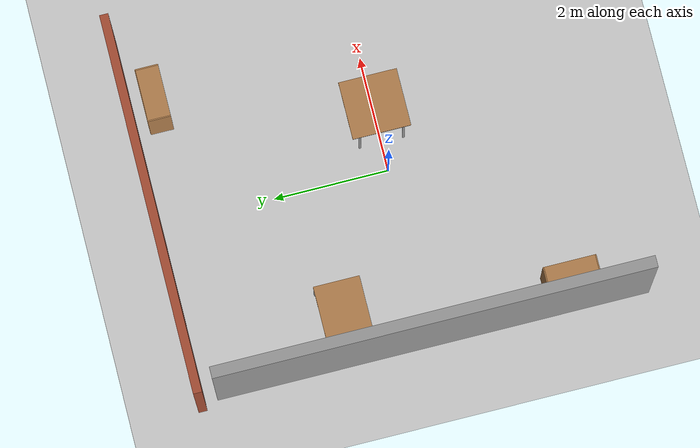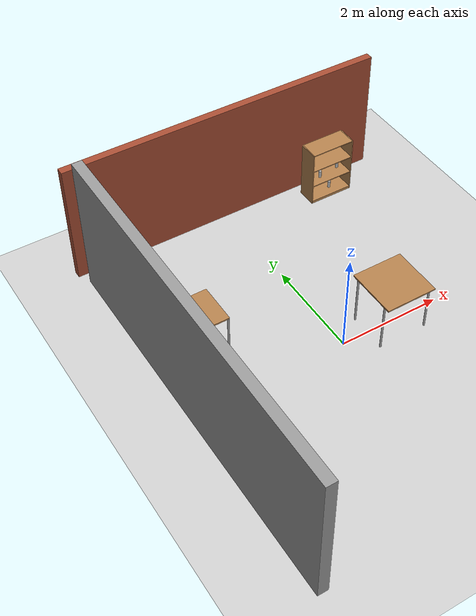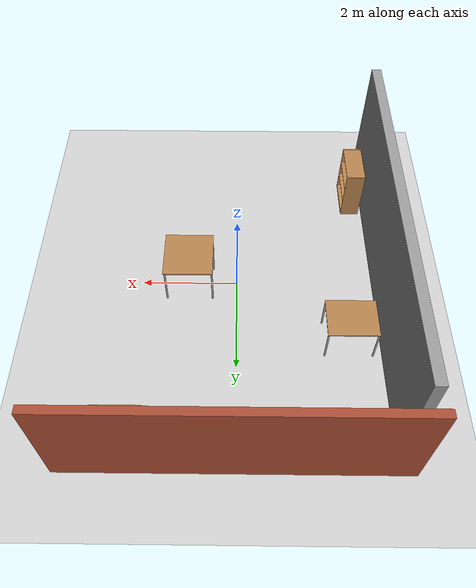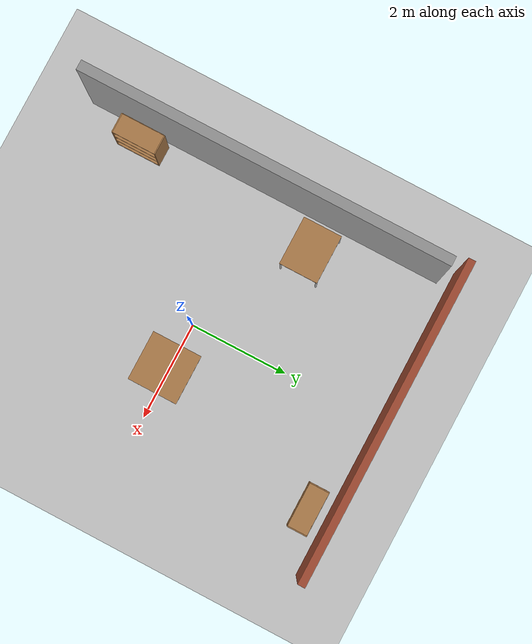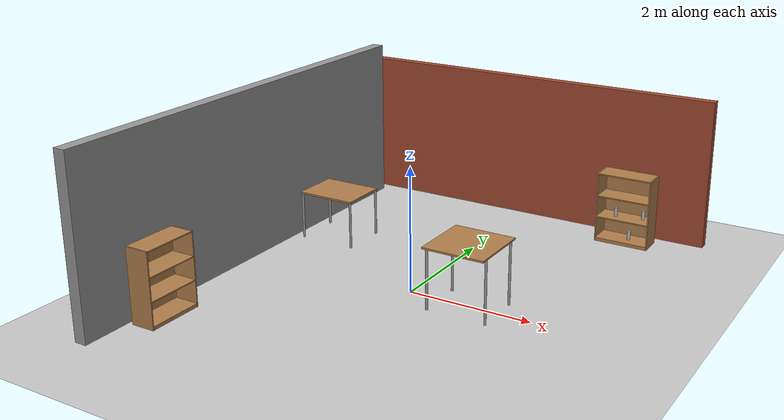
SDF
<sdf version="1.6">
 <world name="default">
  <light name="sun" type="directional">
   <pose>0 0 10 0 -0 0</pose>
   <diffuse>0.8 0.8 0.8 1</diffuse>
   <specular>0.1 0.1 0.1 1</specular>
   <attenuation>
    <range>1000</range>
    <constant>0.9</constant>
    <linear>0.01</linear>
    <quadratic>0.001</quadratic>
   </attenuation>
   <direction>-0.5 0.5 -1</direction>
  </light>
  <model name="ground_plane">
   <static>1</static>
   <link name="link">
    <collision name="collision">
     <geometry><plane><normal>0 0 1</normal><size>100 100</size></plane></geometry>
     <surface><friction><ode><mu>100</mu><mu2>50</mu2></ode></friction></surface>
    </collision>
    <visual name="visual">
     <cast_shadows>0</cast_shadows>
     <geometry><plane><normal>0 0 1</normal><size>100 100</size></plane></geometry>
     <material>
      <script><uri>file://media/materials/scripts/gazebo.material</uri><name>Gazebo/Grey</name></script>
     </material>
    </visual>
   </link>
  </model>
  <gravity>0 0 -9.8</gravity>
  <magnetic_field>6e-06 2.3e-05 -4.2e-05</magnetic_field>
  <atmosphere type="adiabatic"/>
  <physics name="default_physics" default="0" type="ode">
   <max_step_size>0.001</max_step_size>
   <real_time_factor>1</real_time_factor>
   <real_time_update_rate>1000</real_time_update_rate>
  </physics>
  <scene><ambient>0.4 0.4 0.4 1</ambient><background>0.7 0.7 0.7 1</background><shadows>1</shadows></scene>
  <spherical_coordinates>
   <surface_model>EARTH_WGS84</surface_model>
   <latitude_deg>0</latitude_deg>
   <longitude_deg>0</longitude_deg>
   <elevation>0</elevation>
   <heading_deg>0</heading_deg>
  </spherical_coordinates>
  <model name="Brick_Wall">
   <pose>0.021866 4.0336 0 0 -0 0</pose>
   <link name="Wall_0">
    <collision name="Wall_0_Collision">
     <geometry><box><size>6.5 0.15 2.5</size></box></geometry>
     <pose>0 0 1.25 0 -0 0</pose>
    </collision>
    <visual name="Wall_0_Visual">
     <pose>0 0 1.25 0 -0 0</pose>
     <geometry><box><size>6.5 0.15 2.5</size></box></geometry>
     <material>
      <script><uri>file://media/materials/scripts/gazebo.material</uri><name>Gazebo/Bricks</name></script>
      <ambient>1 1 1 1</ambient>
     </material>
    </visual>
   </link>
   <static>1</static>
  </model>
  <model name="grey_wall">
   <static>1</static>
   <link name="link">
    <pose>0 0 1.4 0 -0 0</pose>
    <collision name="collision"><geometry><box><size>7.5 0.2 2.8</size></box></geometry></collision>
    <visual name="visual">
     <cast_shadows>0</cast_shadows>
     <geometry><box><size>7.5 0.2 2.8</size></box></geometry>
     <material>
      <script>
       <uri>model://grey_wall/materials/scripts</uri>
       <uri>model://grey_wall/materials/textures</uri>
       <name>vrc/grey_wall</name>
      </script>
     </material>
    </visual>
   </link>
   <pose>-3 0 0 0 -0 1.5708</pose>
  </model>
  <model name="table">
   <static>1</static>
   <link name="table::link">
    <collision name="surface">
     <pose>0 0 0.8 0 -0 0</pose>
     <geometry><box><size>1 0.8 0.03</size></box></geometry>
    </collision>
    <visual name="visual1">
     <pose>0 0 0.8 0 -0 0</pose>
     <geometry><box><size>1 0.8 0.03</size></box></geometry>
     <material>
      <script><uri>file://media/materials/scripts/gazebo.material</uri><name>Gazebo/Wood</name></script>
     </material>
    </visual>
    <collision name="front_left_leg">
     <pose>0.48 0.38 0.4 0 -0 0</pose>
     <geometry><cylinder><radius>0.02</radius><length>0.8</length></cylinder></geometry>
    </collision>
    <visual name="front_left_leg">
     <pose>0.48 0.38 0.4 0 -0 0</pose>
     <geometry><cylinder><radius>0.02</radius><length>0.8</length></cylinder></geometry>
     <material>
      <script><uri>file://media/materials/scripts/gazebo.material</uri><name>Gazebo/Grey</name></script>
     </material>
    </visual>
    <collision name="front_right_leg">
     <pose>0.48 -0.38 0.4 0 -0 0</pose>
     <geometry><cylinder><radius>0.02</radius><length>0.8</length></cylinder></geometry>
    </collision>
    <visual name="front_right_leg">
     <pose>0.48 -0.38 0.4 0 -0 0</pose>
     <geometry><cylinder><radius>0.02</radius><length>0.8</length></cylinder></geometry>
     <material>
      <script><uri>file://media/materials/scripts/gazebo.material</uri><name>Gazebo/Grey</name></script>
     </material>
    </visual>
    <collision name="back_right_leg">
     <pose>-0.48 -0.38 0.4 0 -0 0</pose>
     <geometry><cylinder><radius>0.02</radius><length>0.8</length></cylinder></geometry>
    </collision>
    <visual name="back_right_leg">
     <pose>-0.48 -0.38 0.4 0 -0 0</pose>
     <geometry><cylinder><radius>0.02</radius><length>0.8</length></cylinder></geometry>
     <material>
      <script><uri>file://media/materials/scripts/gazebo.material</uri><name>Gazebo/Grey</name></script>
     </material>
    </visual>
    <collision name="back_left_leg">
     <pose>-0.48 0.38 0.4 0 -0 0</pose>
     <geometry><cylinder><radius>0.02</radius><length>0.8</length></cylinder></geometry>
    </collision>
    <visual name="back_left_leg">
     <pose>-0.48 0.38 0.4 0 -0 0</pose>
     <geometry><cylinder><radius>0.02</radius><length>0.8</length></cylinder></geometry>
     <material>
      <script><uri>file://media/materials/scripts/gazebo.material</uri><name>Gazebo/Grey</name></script>
     </material>
    </visual>
    <velocity_decay><linear>0</linear><angular>0</angular></velocity_decay>
   </link>
   <pose>-2.24248 1.34567 0 0 -0 0</pose>
  </model>
  <model name="table_1m">
   <static>1</static>
   <link name="link">
    <collision name="surface">
     <pose>0 0 1.01 0 -0 0</pose>
     <geometry><box><size>1 1.01 0.03</size></box></geometry>
    </collision>
    <visual name="visual1">
     <pose>0 0 1.01 0 -0 0</pose>
     <geometry><box><size>1 1.01 0.03</size></box></geometry>
     <material>
      <script><uri>file://media/materials/scripts/gazebo.material</uri><name>Gazebo/Wood</name></script>
     </material>
    </visual>
    <collision name="front_left_leg">
     <pose>0.48 0.38 0.5005 0 -0 0</pose>
     <geometry><cylinder><radius>0.02</radius><length>1.01</length></cylinder></geometry>
    </collision>
    <visual name="front_left_leg">
     <pose>0.48 0.38 0.5005 0 -0 0</pose>
     <geometry><cylinder><radius>0.02</radius><length>1.01</length></cylinder></geometry>
     <material>
      <script><uri>file://media/materials/scripts/gazebo.material</uri><name>Gazebo/Grey</name></script>
     </material>
    </visual>
    <collision name="front_right_leg">
     <pose>0.48 -0.38 0.5005 0 -0 0</pose>
     <geometry><cylinder><radius>0.02</radius><length>1.01</length></cylinder></geometry>
    </collision>
    <visual name="front_right_leg">
     <pose>0.48 -0.38 0.5005 0 -0 0</pose>
     <geometry><cylinder><radius>0.02</radius><length>1.01</length></cylinder></geometry>
     <material>
      <script><uri>file://media/materials/scripts/gazebo.material</uri><name>Gazebo/Grey</name></script>
     </material>
    </visual>
    <collision name="back_right_leg">
     <pose>-0.48 -0.38 0.5005 0 -0 0</pose>
     <geometry><cylinder><radius>0.02</radius><length>1.01</length></cylinder></geometry>
    </collision>
    <visual name="back_right_leg">
     <pose>-0.48 -0.38 0.5005 0 -0 0</pose>
     <geometry><cylinder><radius>0.02</radius><length>1.01</length></cylinder></geometry>
     <material>
      <script><uri>file://media/materials/scripts/gazebo.material</uri><name>Gazebo/Grey</name></script>
     </material>
    </visual>
    <collision name="back_left_leg">
     <pose>-0.48 0.38 0.5005 0 -0 0</pose>
     <geometry><cylinder><radius>0.02</radius><length>1.01</length></cylinder></geometry>
    </collision>
    <visual name="back_left_leg">
     <pose>-0.48 0.38 0.5005 0 -0 0</pose>
     <geometry><cylinder><radius>0.02</radius><length>1.01</length></cylinder></geometry>
     <material>
      <script><uri>file://media/materials/scripts/gazebo.material</uri><name>Gazebo/Grey</name></script>
     </material>
    </visual>
    <velocity_decay><linear>0</linear><angular>0</angular></velocity_decay>
   </link>
   <pose>0.99099 -0.009162 0 0 -0 0</pose>
  </model>
  <model name="bookshelf">
   <static>1</static>
   <link name="link">
    <inertial><mass>1</mass></inertial>
    <collision name="back">
     <pose>0 0.005 0.6 0 -0 0</pose>
     <geometry><box><size>0.9 0.01 1.2</size></box></geometry>
    </collision>
    <visual name="visual1">
     <pose>0 0.005 0.6 0 -0 0</pose>
     <geometry><box><size>0.9 0.01 1.2</size></box></geometry>
     <material>
      <script><uri>file://media/materials/scripts/gazebo.material</uri><name>Gazebo/Wood</name></script>
     </material>
    </visual>
    <collision name="left_side">
     <pose>0.45 -0.195 0.6 0 -0 0</pose>
     <geometry><box><size>0.02 0.4 1.2</size></box></geometry>
    </collision>
    <visual name="visual2">
     <pose>0.45 -0.195 0.6 0 -0 0</pose>
     <geometry><box><size>0.02 0.4 1.2</size></box></geometry>
     <material>
      <script><uri>file://media/materials/scripts/gazebo.material</uri><name>Gazebo/Wood</name></script>
     </material>
    </visual>
    <collision name="right_side">
     <pose>-0.45 -0.195 0.6 0 -0 0</pose>
     <geometry><box><size>0.02 0.4 1.2</size></box></geometry>
    </collision>
    <visual name="visual3">
     <pose>-0.45 -0.195 0.6 0 -0 0</pose>
     <geometry><box><size>0.02 0.4 1.2</size></box></geometry>
     <material>
      <script><uri>file://media/materials/scripts/gazebo.material</uri><name>Gazebo/Wood</name></script>
     </material>
    </visual>
    <collision name="bottom">
     <pose>0 -0.195 0.03 0 -0 0</pose>
     <geometry><box><size>0.88 0.4 0.06</size></box></geometry>
    </collision>
    <visual name="visual4">
     <pose>0 -0.195 0.03 0 -0 0</pose>
     <geometry><box><size>0.88 0.4 0.06</size></box></geometry>
     <material>
      <script><uri>file://media/materials/scripts/gazebo.material</uri><name>Gazebo/Wood</name></script>
     </material>
    </visual>
    <collision name="top">
     <pose>0 -0.195 1.19 0 -0 0</pose>
     <geometry><box><size>0.88 0.4 0.02</size></box></geometry>
    </collision>
    <visual name="visual5">
     <pose>0 -0.195 1.19 0 -0 0</pose>
     <geometry><box><size>0.88 0.4 0.02</size></box></geometry>
     <material>
      <script><uri>file://media/materials/scripts/gazebo.material</uri><name>Gazebo/Wood</name></script>
     </material>
    </visual>
    <collision name="low_shelf">
     <pose>0 -0.195 0.43 0 -0 0</pose>
     <geometry><box><size>0.88 0.4 0.02</size></box></geometry>
    </collision>
    <visual name="visual6">
     <pose>0 -0.195 0.43 0 -0 0</pose>
     <geometry><box><size>0.88 0.4 0.02</size></box></geometry>
     <material>
      <script><uri>file://media/materials/scripts/gazebo.material</uri><name>Gazebo/Wood</name></script>
     </material>
    </visual>
    <collision name="high_shelf">
     <pose>0 -0.195 0.8 0 -0 0</pose>
     <geometry><box><size>0.88 0.4 0.02</size></box></geometry>
    </collision>
    <visual name="visual7">
     <pose>0 -0.195 0.8 0 -0 0</pose>
     <geometry><box><size>0.88 0.4 0.02</size></box></geometry>
     <material>
      <script><uri>file://media/materials/scripts/gazebo.material</uri><name>Gazebo/Wood</name></script>
     </material>
    </visual>
   </link>
   <pose>-2.81485 -2.49546 0 0 -0 1.5708</pose>
  </model>
  <model name="bookshelf_clone">
   <static>1</static>
   <link name="link">
    <inertial><mass>1</mass></inertial>
    <collision name="back">
     <pose>0 0.005 0.6 0 -0 0</pose>
     <geometry><box><size>0.9 0.01 1.2</size></box></geometry>
    </collision>
    <visual name="visual1">
     <pose>0 0.005 0.6 0 -0 0</pose>
     <geometry><box><size>0.9 0.01 1.2</size></box></geometry>
     <material>
      <script><uri>file://media/materials/scripts/gazebo.material</uri><name>Gazebo/Wood</name></script>
     </material>
    </visual>
    <collision name="left_side">
     <pose>0.45 -0.195 0.6 0 -0 0</pose>
     <geometry><box><size>0.02 0.4 1.2</size></box></geometry>
    </collision>
    <visual name="visual2">
     <pose>0.45 -0.195 0.6 0 -0 0</pose>
     <geometry><box><size>0.02 0.4 1.2</size></box></geometry>
     <material>
      <script><uri>file://media/materials/scripts/gazebo.material</uri><name>Gazebo/Wood</name></script>
     </material>
    </visual>
    <collision name="right_side">
     <pose>-0.45 -0.195 0.6 0 -0 0</pose>
     <geometry><box><size>0.02 0.4 1.2</size></box></geometry>
    </collision>
    <visual name="visual3">
     <pose>-0.45 -0.195 0.6 0 -0 0</pose>
     <geometry><box><size>0.02 0.4 1.2</size></box></geometry>
     <material>
      <script><uri>file://media/materials/scripts/gazebo.material</uri><name>Gazebo/Wood</name></script>
     </material>
    </visual>
    <collision name="bottom">
     <pose>0 -0.195 0.03 0 -0 0</pose>
     <geometry><box><size>0.88 0.4 0.06</size></box></geometry>
    </collision>
    <visual name="visual4">
     <pose>0 -0.195 0.03 0 -0 0</pose>
     <geometry><box><size>0.88 0.4 0.06</size></box></geometry>
     <material>
      <script><uri>file://media/materials/scripts/gazebo.material</uri><name>Gazebo/Wood</name></script>
     </material>
    </visual>
    <collision name="top">
     <pose>0 -0.195 1.19 0 -0 0</pose>
     <geometry><box><size>0.88 0.4 0.02</size></box></geometry>
    </collision>
    <visual name="visual5">
     <pose>0 -0.195 1.19 0 -0 0</pose>
     <geometry><box><size>0.88 0.4 0.02</size></box></geometry>
     <material>
      <script><uri>file://media/materials/scripts/gazebo.material</uri><name>Gazebo/Wood</name></script>
     </material>
    </visual>
    <collision name="low_shelf">
     <pose>0 -0.195 0.43 0 -0 0</pose>
     <geometry><box><size>0.88 0.4 0.02</size></box></geometry>
    </collision>
    <visual name="visual6">
     <pose>0 -0.195 0.43 0 -0 0</pose>
     <geometry><box><size>0.88 0.4 0.02</size></box></geometry>
     <material>
      <script><uri>file://media/materials/scripts/gazebo.material</uri><name>Gazebo/Wood</name></script>
     </material>
    </visual>
    <collision name="high_shelf">
     <pose>0 -0.195 0.8 0 -0 0</pose>
     <geometry><box><size>0.88 0.4 0.02</size></box></geometry>
    </collision>
    <visual name="visual7">
     <pose>0 -0.195 0.8 0 -0 0</pose>
     <geometry><box><size>0.88 0.4 0.02</size></box></geometry>
     <material>
      <script><uri>file://media/materials/scripts/gazebo.material</uri><name>Gazebo/Wood</name></script>
     </material>
    </visual>
   </link>
   <pose>2.05093 3.75463 0 0 -0 4e-06</pose>
  </model>
  <model name="coke_can_slim">
   <static>0</static>
   <link name="link">
    <inertial>
     <mass>0.15</mass>
     <inertia><ixx>2079.98</ixx><ixy>0</ixy><ixz>0</ixz><iyy>2079.98</iyy><iyz>0</iyz><izz>419.21</izz></inertia>
    </inertial>
    <collision name="collision">
     <geometry><cylinder><radius>0.029</radius><length>0.15</length></cylinder></geometry>
    </collision>
    <visual name="visual">
     <geometry><cylinder><radius>0.029</radius><length>0.15</length></cylinder></geometry>
     <material>
      <script>
       <uri>model://coke_can_slim/material/scripts</uri>
       <uri>model://coke_can_slim/material/textures</uri>
       <name>Custom/coke_can_slim</name>
      </script>
     </material>
    </visual>
    <velocity_decay><linear>0</linear><angular>0</angular></velocity_decay>
   </link>
   <pose>2.12886 3.55267 0.135003 -0.00012 0.000129 0</pose>
  </model>
  <model name="coke_can_slim_0">
   <static>0</static>
   <link name="link">
    <inertial>
     <mass>0.15</mass>
     <inertia><ixx>2079.98</ixx><ixy>0</ixy><ixz>0</ixz><iyy>2079.98</iyy><iyz>0</iyz><izz>419.21</izz></inertia>
    </inertial>
    <collision name="collision">
     <geometry><cylinder><radius>0.029</radius><length>0.15</length></cylinder></geometry>
    </collision>
    <visual name="visual">
     <geometry><cylinder><radius>0.029</radius><length>0.15</length></cylinder></geometry>
     <material>
      <script>
       <uri>model://coke_can_slim/material/scripts</uri>
       <uri>model://coke_can_slim/material/textures</uri>
       <name>Custom/coke_can_slim</name>
      </script>
     </material>
    </visual>
    <velocity_decay><linear>0</linear><angular>0</angular></velocity_decay>
   </link>
   <pose>2.33674 3.61205 0.514996 -0.000208 1.3e-05 -1.61298</pose>
  </model>
  <model name="coke_can_slim_0_clone">
   <static>0</static>
   <link name="link">
    <inertial>
     <mass>0.15</mass>
     <inertia><ixx>2079.98</ixx><ixy>0</ixy><ixz>0</ixz><iyy>2079.98</iyy><iyz>0</iyz><izz>419.21</izz></inertia>
    </inertial>
    <collision name="collision">
     <geometry><cylinder><radius>0.029</radius><length>0.15</length></cylinder></geometry>
    </collision>
    <visual name="visual">
     <geometry><cylinder><radius>0.029</radius><length>0.15</length></cylinder></geometry>
     <material>
      <script>
       <uri>model://coke_can_slim/material/scripts</uri>
       <uri>model://coke_can_slim/material/textures</uri>
       <name>Custom/coke_can_slim</name>
      </script>
     </material>
    </visual>
    <velocity_decay><linear>0</linear><angular>0</angular></velocity_decay>
   </link>
   <pose>1.88395 3.53777 0.515003 5.9e-05 -8.8e-05 2.58905</pose>
  </model>
 </world>
</sdf>
